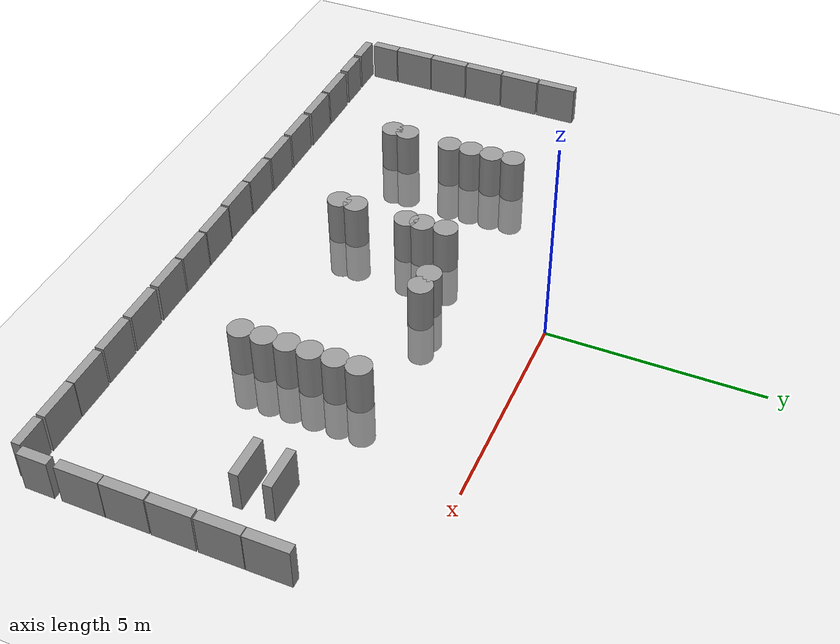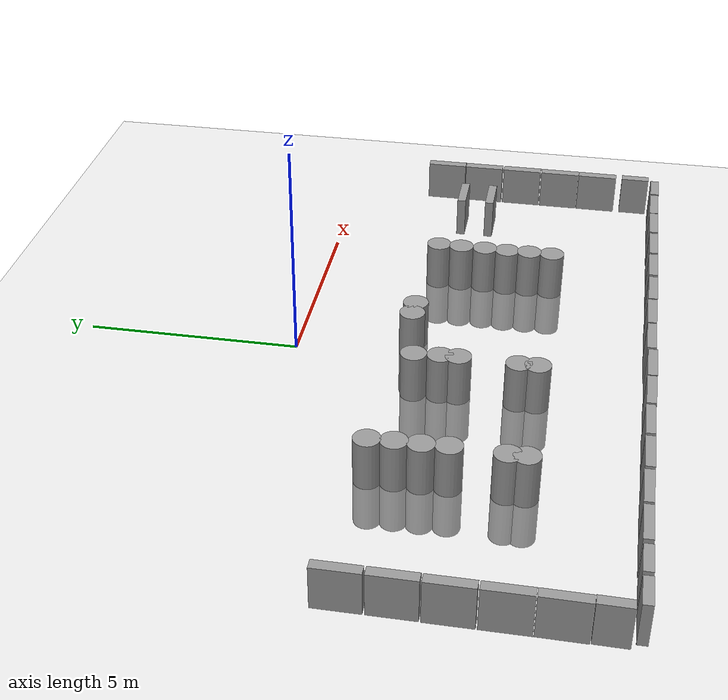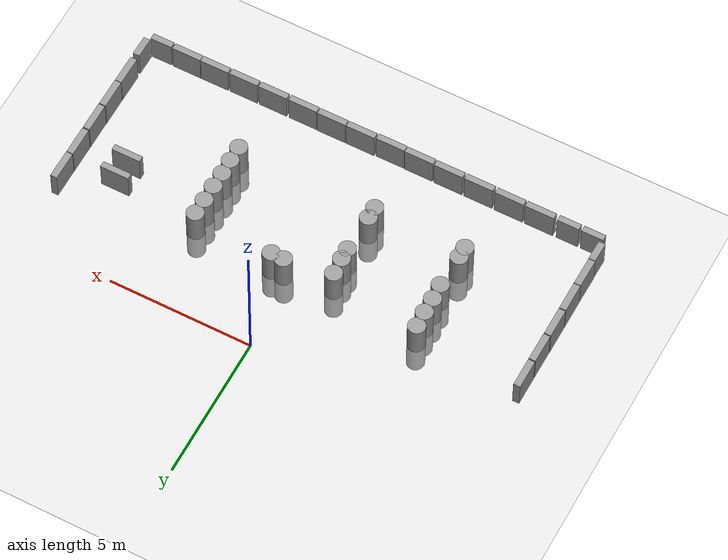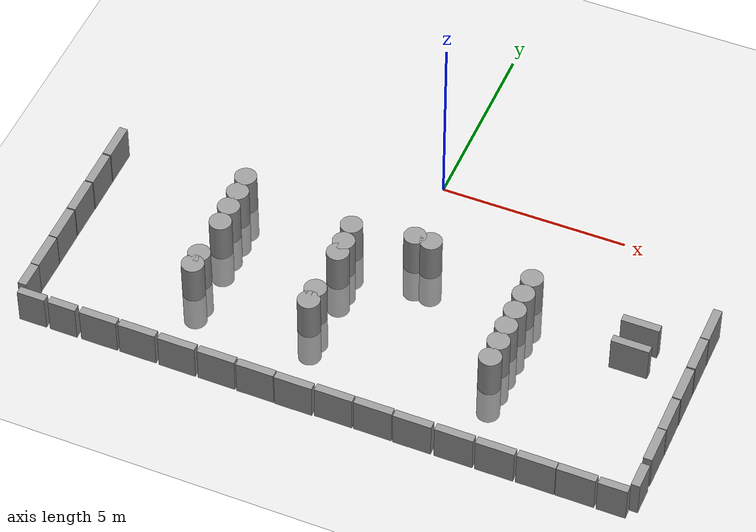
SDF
<sdf version="1.6">
 <world name="default">
  <model name="ground_plane">
   <static>1</static>
   <static>1</static>
   <link name="link">
    <collision name="collision">
     <geometry><plane><normal>0 0 1</normal><size>100 100</size></plane></geometry>
     <surface><friction><ode><mu>100</mu><mu2>50</mu2></ode></friction></surface>
    </collision>
    <visual name="visual">
     <cast_shadows>0</cast_shadows>
     <geometry><plane><normal>0 0 1</normal><size>100 100</size></plane></geometry>
     <material>
      <script><uri>file://media/materials/scripts/gazebo.material</uri><name>Gazebo/Grey</name></script>
     </material>
    </visual>
   </link>
  </model>
  <model name="unit_box_0_clone_9">
   <pose>8.12548 -2.50421 0.5 0 -0 -1.6e-05</pose>
   <link name="link">
    <inertial>
     <mass>1</mass>
     <inertia>
      <ixx>0.166667</ixx>
      <ixy>0</ixy>
      <ixz>0</ixz>
      <iyy>0.166667</iyy>
      <iyz>0</iyz>
      <izz>0.166667</izz>
     </inertia>
    </inertial>
    <collision name="collision"><geometry><box><size>0.230819 1 1</size></box></geometry></collision>
    <visual name="visual">
     <geometry><box><size>0.230819 1 1</size></box></geometry>
     <material>
      <script><name>Gazebo/Grey</name><uri>file://media/materials/scripts/gazebo.material</uri></script>
     </material>
    </visual>
   </link>
  </model>
  <model name="unit_box_0_clone_10">
   <pose>8.12331 -3.52223 0.5 0 -0 -1.6e-05</pose>
   <link name="link">
    <inertial>
     <mass>1</mass>
     <inertia>
      <ixx>0.166667</ixx>
      <ixy>0</ixy>
      <ixz>0</ixz>
      <iyy>0.166667</iyy>
      <iyz>0</iyz>
      <izz>0.166667</izz>
     </inertia>
    </inertial>
    <collision name="collision"><geometry><box><size>0.230819 1 1</size></box></geometry></collision>
    <visual name="visual">
     <geometry><box><size>0.230819 1 1</size></box></geometry>
     <material>
      <script><name>Gazebo/Grey</name><uri>file://media/materials/scripts/gazebo.material</uri></script>
     </material>
    </visual>
   </link>
  </model>
  <model name="unit_box_0_clone_11">
   <pose>8.1233 -4.56316 0.5 0 -0 -1.6e-05</pose>
   <link name="link">
    <inertial>
     <mass>1</mass>
     <inertia>
      <ixx>0.166667</ixx>
      <ixy>0</ixy>
      <ixz>0</ixz>
      <iyy>0.166667</iyy>
      <iyz>0</iyz>
      <izz>0.166667</izz>
     </inertia>
    </inertial>
    <collision name="collision"><geometry><box><size>0.230819 1 1</size></box></geometry></collision>
    <visual name="visual">
     <geometry><box><size>0.230819 1 1</size></box></geometry>
     <material>
      <script><name>Gazebo/Grey</name><uri>file://media/materials/scripts/gazebo.material</uri></script>
     </material>
    </visual>
   </link>
  </model>
  <model name="unit_box_0_clone_12">
   <pose>8.11815 -5.59378 0.5 0 -0 -1.6e-05</pose>
   <link name="link">
    <inertial>
     <mass>1</mass>
     <inertia>
      <ixx>0.166667</ixx>
      <ixy>0</ixy>
      <ixz>0</ixz>
      <iyy>0.166667</iyy>
      <iyz>0</iyz>
      <izz>0.166667</izz>
     </inertia>
    </inertial>
    <collision name="collision"><geometry><box><size>0.230819 1 1</size></box></geometry></collision>
    <visual name="visual">
     <geometry><box><size>0.230819 1 1</size></box></geometry>
     <material>
      <script><name>Gazebo/Grey</name><uri>file://media/materials/scripts/gazebo.material</uri></script>
     </material>
    </visual>
   </link>
  </model>
  <model name="unit_box_0_clone_13">
   <pose>8.11333 -6.60776 0.5 -0 -0 -0.005505</pose>
   <link name="link">
    <inertial>
     <mass>1</mass>
     <inertia>
      <ixx>0.166667</ixx>
      <ixy>0</ixy>
      <ixz>0</ixz>
      <iyy>0.166667</iyy>
      <iyz>0</iyz>
      <izz>0.166667</izz>
     </inertia>
    </inertial>
    <collision name="collision"><geometry><box><size>0.230819 1 1</size></box></geometry></collision>
    <visual name="visual">
     <geometry><box><size>0.230819 1 1</size></box></geometry>
     <material>
      <script><name>Gazebo/Grey</name><uri>file://media/materials/scripts/gazebo.material</uri></script>
     </material>
    </visual>
   </link>
  </model>
  <model name="unit_box_clone_15_clone_0">
   <pose>6.71207 -8.13106 0.5 0 -0 0.000212</pose>
   <link name="link">
    <inertial>
     <mass>1</mass>
     <inertia>
      <ixx>0.166667</ixx>
      <ixy>0</ixy>
      <ixz>0</ixz>
      <iyy>0.166667</iyy>
      <iyz>0</iyz>
      <izz>0.166667</izz>
     </inertia>
    </inertial>
    <collision name="collision"><geometry><box><size>1 0.210541 1</size></box></geometry></collision>
    <visual name="visual">
     <geometry><box><size>1 0.210541 1</size></box></geometry>
     <material>
      <script><name>Gazebo/Grey</name><uri>file://media/materials/scripts/gazebo.material</uri></script>
     </material>
    </visual>
   </link>
  </model>
  <model name="unit_box_clone_15_clone_1">
   <pose>5.69715 -8.13105 0.5 0 -0 0.000212</pose>
   <link name="link">
    <inertial>
     <mass>1</mass>
     <inertia>
      <ixx>0.166667</ixx>
      <ixy>0</ixy>
      <ixz>0</ixz>
      <iyy>0.166667</iyy>
      <iyz>0</iyz>
      <izz>0.166667</izz>
     </inertia>
    </inertial>
    <collision name="collision"><geometry><box><size>1 0.210541 1</size></box></geometry></collision>
    <visual name="visual">
     <geometry><box><size>1 0.210541 1</size></box></geometry>
     <material>
      <script><name>Gazebo/Grey</name><uri>file://media/materials/scripts/gazebo.material</uri></script>
     </material>
    </visual>
   </link>
  </model>
  <model name="unit_box_clone_15_clone_2">
   <pose>4.63881 -8.13723 0.5 0 -0 0.000212</pose>
   <link name="link">
    <inertial>
     <mass>1</mass>
     <inertia>
      <ixx>0.166667</ixx>
      <ixy>0</ixy>
      <ixz>0</ixz>
      <iyy>0.166667</iyy>
      <iyz>0</iyz>
      <izz>0.166667</izz>
     </inertia>
    </inertial>
    <collision name="collision"><geometry><box><size>1 0.210541 1</size></box></geometry></collision>
    <visual name="visual">
     <geometry><box><size>1 0.210541 1</size></box></geometry>
     <material>
      <script><name>Gazebo/Grey</name><uri>file://media/materials/scripts/gazebo.material</uri></script>
     </material>
    </visual>
   </link>
  </model>
  <model name="unit_box_clone_15_clone_3">
   <pose>3.57975 -8.13723 0.5 0 -0 0.000212</pose>
   <link name="link">
    <inertial>
     <mass>1</mass>
     <inertia>
      <ixx>0.166667</ixx>
      <ixy>0</ixy>
      <ixz>0</ixz>
      <iyy>0.166667</iyy>
      <iyz>0</iyz>
      <izz>0.166667</izz>
     </inertia>
    </inertial>
    <collision name="collision"><geometry><box><size>1 0.210541 1</size></box></geometry></collision>
    <visual name="visual">
     <geometry><box><size>1 0.210541 1</size></box></geometry>
     <material>
      <script><name>Gazebo/Grey</name><uri>file://media/materials/scripts/gazebo.material</uri></script>
     </material>
    </visual>
   </link>
  </model>
  <model name="unit_box_clone_15_clone_4">
   <pose>2.49815 -8.13722 0.5 0 -0 0.000212</pose>
   <link name="link">
    <inertial>
     <mass>1</mass>
     <inertia>
      <ixx>0.166667</ixx>
      <ixy>0</ixy>
      <ixz>0</ixz>
      <iyy>0.166667</iyy>
      <iyz>0</iyz>
      <izz>0.166667</izz>
     </inertia>
    </inertial>
    <collision name="collision"><geometry><box><size>1 0.210541 1</size></box></geometry></collision>
    <visual name="visual">
     <geometry><box><size>1 0.210541 1</size></box></geometry>
     <material>
      <script><name>Gazebo/Grey</name><uri>file://media/materials/scripts/gazebo.material</uri></script>
     </material>
    </visual>
   </link>
  </model>
  <model name="unit_box_clone_15_clone_5">
   <pose>1.46162 -8.12595 0.5 0 -0 0.000212</pose>
   <link name="link">
    <inertial>
     <mass>1</mass>
     <inertia>
      <ixx>0.166667</ixx>
      <ixy>0</ixy>
      <ixz>0</ixz>
      <iyy>0.166667</iyy>
      <iyz>0</iyz>
      <izz>0.166667</izz>
     </inertia>
    </inertial>
    <collision name="collision"><geometry><box><size>1 0.210541 1</size></box></geometry></collision>
    <visual name="visual">
     <geometry><box><size>1 0.210541 1</size></box></geometry>
     <material>
      <script><name>Gazebo/Grey</name><uri>file://media/materials/scripts/gazebo.material</uri></script>
     </material>
    </visual>
   </link>
  </model>
  <model name="unit_box_clone_15_clone_6">
   <pose>0.425094 -8.12594 0.5 0 -0 0.000212</pose>
   <link name="link">
    <inertial>
     <mass>1</mass>
     <inertia>
      <ixx>0.166667</ixx>
      <ixy>0</ixy>
      <ixz>0</ixz>
      <iyy>0.166667</iyy>
      <iyz>0</iyz>
      <izz>0.166667</izz>
     </inertia>
    </inertial>
    <collision name="collision"><geometry><box><size>1 0.210541 1</size></box></geometry></collision>
    <visual name="visual">
     <geometry><box><size>1 0.210541 1</size></box></geometry>
     <material>
      <script><name>Gazebo/Grey</name><uri>file://media/materials/scripts/gazebo.material</uri></script>
     </material>
    </visual>
   </link>
  </model>
  <model name="unit_box_clone_15_clone_7">
   <pose>-0.633968 -8.14849 0.5 0 -0 0.000212</pose>
   <link name="link">
    <inertial>
     <mass>1</mass>
     <inertia>
      <ixx>0.166667</ixx>
      <ixy>0</ixy>
      <ixz>0</ixz>
      <iyy>0.166667</iyy>
      <iyz>0</iyz>
      <izz>0.166667</izz>
     </inertia>
    </inertial>
    <collision name="collision"><geometry><box><size>1 0.210541 1</size></box></geometry></collision>
    <visual name="visual">
     <geometry><box><size>1 0.210541 1</size></box></geometry>
     <material>
      <script><name>Gazebo/Grey</name><uri>file://media/materials/scripts/gazebo.material</uri></script>
     </material>
    </visual>
   </link>
  </model>
  <model name="unit_box_clone_15_clone_8">
   <pose>-1.65923 -8.13721 0.5 0 -0 0.000212</pose>
   <link name="link">
    <inertial>
     <mass>1</mass>
     <inertia>
      <ixx>0.166667</ixx>
      <ixy>0</ixy>
      <ixz>0</ixz>
      <iyy>0.166667</iyy>
      <iyz>0</iyz>
      <izz>0.166667</izz>
     </inertia>
    </inertial>
    <collision name="collision"><geometry><box><size>1 0.210541 1</size></box></geometry></collision>
    <visual name="visual">
     <geometry><box><size>1 0.210541 1</size></box></geometry>
     <material>
      <script><name>Gazebo/Grey</name><uri>file://media/materials/scripts/gazebo.material</uri></script>
     </material>
    </visual>
   </link>
  </model>
  <model name="unit_box_clone_15_clone_9">
   <pose>-2.70703 -8.12596 0.5 0 -0 0.000212</pose>
   <link name="link">
    <inertial>
     <mass>1</mass>
     <inertia>
      <ixx>0.166667</ixx>
      <ixy>0</ixy>
      <ixz>0</ixz>
      <iyy>0.166667</iyy>
      <iyz>0</iyz>
      <izz>0.166667</izz>
     </inertia>
    </inertial>
    <collision name="collision"><geometry><box><size>1 0.210541 1</size></box></geometry></collision>
    <visual name="visual">
     <geometry><box><size>1 0.210541 1</size></box></geometry>
     <material>
      <script><name>Gazebo/Grey</name><uri>file://media/materials/scripts/gazebo.material</uri></script>
     </material>
    </visual>
   </link>
  </model>
  <model name="unit_box_clone_15_clone_10">
   <pose>-3.77736 -8.12595 0.5 0 -0 0.000212</pose>
   <link name="link">
    <inertial>
     <mass>1</mass>
     <inertia>
      <ixx>0.166667</ixx>
      <ixy>0</ixy>
      <ixz>0</ixz>
      <iyy>0.166667</iyy>
      <iyz>0</iyz>
      <izz>0.166667</izz>
     </inertia>
    </inertial>
    <collision name="collision"><geometry><box><size>1 0.210541 1</size></box></geometry></collision>
    <visual name="visual">
     <geometry><box><size>1 0.210541 1</size></box></geometry>
     <material>
      <script><name>Gazebo/Grey</name><uri>file://media/materials/scripts/gazebo.material</uri></script>
     </material>
    </visual>
   </link>
  </model>
  <model name="unit_box_clone_15_clone_11">
   <pose>-4.85896 -8.11469 0.5 0 -0 0.000212</pose>
   <link name="link">
    <inertial>
     <mass>1</mass>
     <inertia>
      <ixx>0.166667</ixx>
      <ixy>0</ixy>
      <ixz>0</ixz>
      <iyy>0.166667</iyy>
      <iyz>0</iyz>
      <izz>0.166667</izz>
     </inertia>
    </inertial>
    <collision name="collision"><geometry><box><size>1 0.210541 1</size></box></geometry></collision>
    <visual name="visual">
     <geometry><box><size>1 0.210541 1</size></box></geometry>
     <material>
      <script><name>Gazebo/Grey</name><uri>file://media/materials/scripts/gazebo.material</uri></script>
     </material>
    </visual>
   </link>
  </model>
  <model name="unit_box_clone_15_clone_12">
   <pose>-5.91802 -8.11468 0.5 0 -0 0.000212</pose>
   <link name="link">
    <inertial>
     <mass>1</mass>
     <inertia>
      <ixx>0.166667</ixx>
      <ixy>0</ixy>
      <ixz>0</ixz>
      <iyy>0.166667</iyy>
      <iyz>0</iyz>
      <izz>0.166667</izz>
     </inertia>
    </inertial>
    <collision name="collision"><geometry><box><size>1 0.210541 1</size></box></geometry></collision>
    <visual name="visual">
     <geometry><box><size>1 0.210541 1</size></box></geometry>
     <material>
      <script><name>Gazebo/Grey</name><uri>file://media/materials/scripts/gazebo.material</uri></script>
     </material>
    </visual>
   </link>
  </model>
  <model name="unit_box_0_clone_4_clone_9">
   <pose>-8.13285 -2.58438 0.5 0 -0 -1.6e-05</pose>
   <link name="link">
    <inertial>
     <mass>1</mass>
     <inertia>
      <ixx>0.166667</ixx>
      <ixy>0</ixy>
      <ixz>0</ixz>
      <iyy>0.166667</iyy>
      <iyz>0</iyz>
      <izz>0.166667</izz>
     </inertia>
    </inertial>
    <collision name="collision"><geometry><box><size>0.230819 1 1</size></box></geometry></collision>
    <visual name="visual">
     <geometry><box><size>0.230819 1 1</size></box></geometry>
     <material>
      <script><name>Gazebo/Grey</name><uri>file://media/materials/scripts/gazebo.material</uri></script>
     </material>
    </visual>
   </link>
  </model>
  <model name="unit_box_0_clone_4_clone_10">
   <pose>-8.13285 -3.6243 0.5 0 -0 -1.6e-05</pose>
   <link name="link">
    <inertial>
     <mass>1</mass>
     <inertia>
      <ixx>0.166667</ixx>
      <ixy>0</ixy>
      <ixz>0</ixz>
      <iyy>0.166667</iyy>
      <iyz>0</iyz>
      <izz>0.166667</izz>
     </inertia>
    </inertial>
    <collision name="collision"><geometry><box><size>0.230819 1 1</size></box></geometry></collision>
    <visual name="visual">
     <geometry><box><size>0.230819 1 1</size></box></geometry>
     <material>
      <script><name>Gazebo/Grey</name><uri>file://media/materials/scripts/gazebo.material</uri></script>
     </material>
    </visual>
   </link>
  </model>
  <model name="unit_box_0_clone_4_clone_11">
   <pose>-8.1396 -4.65747 0.5 0 -0 -1.6e-05</pose>
   <link name="link">
    <inertial>
     <mass>1</mass>
     <inertia>
      <ixx>0.166667</ixx>
      <ixy>0</ixy>
      <ixz>0</ixz>
      <iyy>0.166667</iyy>
      <iyz>0</iyz>
      <izz>0.166667</izz>
     </inertia>
    </inertial>
    <collision name="collision"><geometry><box><size>0.230819 1 1</size></box></geometry></collision>
    <visual name="visual">
     <geometry><box><size>0.230819 1 1</size></box></geometry>
     <material>
      <script><name>Gazebo/Grey</name><uri>file://media/materials/scripts/gazebo.material</uri></script>
     </material>
    </visual>
   </link>
  </model>
  <model name="unit_box_0_clone_4_clone_12">
   <pose>-8.1396 -5.69064 0.5 0 -0 -1.6e-05</pose>
   <link name="link">
    <inertial>
     <mass>1</mass>
     <inertia>
      <ixx>0.166667</ixx>
      <ixy>0</ixy>
      <ixz>0</ixz>
      <iyy>0.166667</iyy>
      <iyz>0</iyz>
      <izz>0.166667</izz>
     </inertia>
    </inertial>
    <collision name="collision"><geometry><box><size>0.230819 1 1</size></box></geometry></collision>
    <visual name="visual">
     <geometry><box><size>0.230819 1 1</size></box></geometry>
     <material>
      <script><name>Gazebo/Grey</name><uri>file://media/materials/scripts/gazebo.material</uri></script>
     </material>
    </visual>
   </link>
  </model>
  <model name="unit_box_0_clone_4_clone_13">
   <pose>-8.14113 -6.70873 0.5 0 -0 -0.009128</pose>
   <link name="link">
    <inertial>
     <mass>1</mass>
     <inertia>
      <ixx>0.166667</ixx>
      <ixy>0</ixy>
      <ixz>0</ixz>
      <iyy>0.166667</iyy>
      <iyz>0</iyz>
      <izz>0.166667</izz>
     </inertia>
    </inertial>
    <collision name="collision"><geometry><box><size>0.230819 1 1</size></box></geometry></collision>
    <visual name="visual">
     <geometry><box><size>0.230819 1 1</size></box></geometry>
     <material>
      <script><name>Gazebo/Grey</name><uri>file://media/materials/scripts/gazebo.material</uri></script>
     </material>
    </visual>
   </link>
  </model>
  <model name="unit_box_clone_11_clone_1_clone_0">
   <pose>-6.90881 -8.11956 0.499997 -2e-06 -8e-06 -0.004561</pose>
   <link name="link">
    <inertial>
     <mass>1</mass>
     <inertia>
      <ixx>0.166667</ixx>
      <ixy>0</ixy>
      <ixz>0</ixz>
      <iyy>0.166667</iyy>
      <iyz>0</iyz>
      <izz>0.166667</izz>
     </inertia>
    </inertial>
    <collision name="collision"><geometry><box><size>0.750223 0.210541 1</size></box></geometry></collision>
    <visual name="visual">
     <geometry><box><size>0.750223 0.210541 1</size></box></geometry>
     <material>
      <script><name>Gazebo/Grey</name><uri>file://media/materials/scripts/gazebo.material</uri></script>
     </material>
    </visual>
   </link>
  </model>
  <model name="unit_box_0_clone_4_clone_13_clone_clone">
   <pose>-8.13833 -7.5766 0.499997 -7e-06 2e-06 -0.012568</pose>
   <link name="link">
    <inertial>
     <mass>1</mass>
     <inertia>
      <ixx>0.166667</ixx>
      <ixy>0</ixy>
      <ixz>0</ixz>
      <iyy>0.166667</iyy>
      <iyz>0</iyz>
      <izz>0.166667</izz>
     </inertia>
    </inertial>
    <collision name="collision"><geometry><box><size>0.230819 0.700336 1</size></box></geometry></collision>
    <visual name="visual">
     <geometry><box><size>0.230819 0.700336 1</size></box></geometry>
     <material>
      <script><name>Gazebo/Grey</name><uri>file://media/materials/scripts/gazebo.material</uri></script>
     </material>
    </visual>
   </link>
  </model>
  <model name="unit_box_clone_11_clone_1_clone_0_clone">
   <pose>-7.75475 -8.122 0.499997 2e-06 7e-06 0.001038</pose>
   <link name="link">
    <inertial>
     <mass>1</mass>
     <inertia>
      <ixx>0.166667</ixx>
      <ixy>0</ixy>
      <ixz>0</ixz>
      <iyy>0.166667</iyy>
      <iyz>0</iyz>
      <izz>0.166667</izz>
     </inertia>
    </inertial>
    <collision name="collision"><geometry><box><size>0.750223 0.210541 1</size></box></geometry></collision>
    <visual name="visual">
     <geometry><box><size>0.750223 0.210541 1</size></box></geometry>
     <material>
      <script><name>Gazebo/Grey</name><uri>file://media/materials/scripts/gazebo.material</uri></script>
     </material>
    </visual>
   </link>
  </model>
  <model name="unit_box_clone_11_clone_1_clone_2">
   <pose>7.64249 -8.13928 0.5 0 -1e-06 0.003871</pose>
   <link name="link">
    <inertial>
     <mass>1</mass>
     <inertia>
      <ixx>0.166667</ixx>
      <ixy>0</ixy>
      <ixz>0</ixz>
      <iyy>0.166667</iyy>
      <iyz>0</iyz>
      <izz>0.166667</izz>
     </inertia>
    </inertial>
    <collision name="collision"><geometry><box><size>0.750223 0.210541 1</size></box></geometry></collision>
    <visual name="visual">
     <geometry><box><size>0.750223 0.210541 1</size></box></geometry>
     <material>
      <script><name>Gazebo/Grey</name><uri>file://media/materials/scripts/gazebo.material</uri></script>
     </material>
    </visual>
   </link>
  </model>
  <model name="unit_box_0_clone_4_clone_13_clone_clone_clone">
   <pose>8.11857 -7.62155 0.499997 -7e-06 -3e-06 -0.006136</pose>
   <link name="link">
    <inertial>
     <mass>1</mass>
     <inertia>
      <ixx>0.166667</ixx>
      <ixy>0</ixy>
      <ixz>0</ixz>
      <iyy>0.166667</iyy>
      <iyz>0</iyz>
      <izz>0.166667</izz>
     </inertia>
    </inertial>
    <collision name="collision"><geometry><box><size>0.230819 0.700336 1</size></box></geometry></collision>
    <visual name="visual">
     <geometry><box><size>0.230819 0.700336 1</size></box></geometry>
     <material>
      <script><name>Gazebo/Grey</name><uri>file://media/materials/scripts/gazebo.material</uri></script>
     </material>
    </visual>
   </link>
  </model>
  <model name="unit_cylinder_153_clone_clone_5_clone_clone_13_clone_0_clone_29_clone_32_clone_0_clone_4_clone_46_clone_42_clone_clone_clone_4_clone_2_clone_16">
   <static>1</static>
   <pose>-4.47583 -2.48846 0 0 -0 0</pose>
   <link name="link">
    <inertial>
     <mass>1</mass>
     <inertia><ixx>0.145833</ixx><ixy>0</ixy><ixz>0</ixz><iyy>0.145833</iyy><iyz>0</iyz><izz>0.125</izz></inertia>
    </inertial>
    <collision name="collision">
     <geometry><cylinder><radius>0.295479</radius><length>2.18667</length></cylinder></geometry>
    </collision>
    <visual name="visual">
     <geometry><cylinder><radius>0.295479</radius><length>2.18667</length></cylinder></geometry>
     <material>
      <script><name>Gazebo/Grey</name><uri>file://media/materials/scripts/gazebo.material</uri></script>
     </material>
    </visual>
   </link>
  </model>
  <model name="unit_cylinder_153_clone_clone_5_clone_clone_13_clone_0_clone_29_clone_32_clone_0_clone_4_clone_46_clone_42_clone_clone_clone_4_clone_2_clone_17">
   <static>1</static>
   <pose>-4.45078 -3.03983 0 0 -0 0</pose>
   <link name="link">
    <inertial>
     <mass>1</mass>
     <inertia><ixx>0.145833</ixx><ixy>0</ixy><ixz>0</ixz><iyy>0.145833</iyy><iyz>0</iyz><izz>0.125</izz></inertia>
    </inertial>
    <collision name="collision">
     <geometry><cylinder><radius>0.295479</radius><length>2.18667</length></cylinder></geometry>
    </collision>
    <visual name="visual">
     <geometry><cylinder><radius>0.295479</radius><length>2.18667</length></cylinder></geometry>
     <material>
      <script><name>Gazebo/Grey</name><uri>file://media/materials/scripts/gazebo.material</uri></script>
     </material>
    </visual>
   </link>
  </model>
  <model name="unit_cylinder_153_clone_clone_5_clone_clone_13_clone_0_clone_29_clone_32_clone_0_clone_4_clone_46_clone_42_clone_clone_clone_4_clone_2_clone_18">
   <static>1</static>
   <pose>-4.45078 -3.5912 0 0 -0 0</pose>
   <link name="link">
    <inertial>
     <mass>1</mass>
     <inertia><ixx>0.145833</ixx><ixy>0</ixy><ixz>0</ixz><iyy>0.145833</iyy><iyz>0</iyz><izz>0.125</izz></inertia>
    </inertial>
    <collision name="collision">
     <geometry><cylinder><radius>0.295479</radius><length>2.18667</length></cylinder></geometry>
    </collision>
    <visual name="visual">
     <geometry><cylinder><radius>0.295479</radius><length>2.18667</length></cylinder></geometry>
     <material>
      <script><name>Gazebo/Grey</name><uri>file://media/materials/scripts/gazebo.material</uri></script>
     </material>
    </visual>
   </link>
  </model>
  <model name="unit_cylinder_153_clone_clone_5_clone_clone_13_clone_0_clone_29_clone_32_clone_0_clone_4_clone_46_clone_42_clone_clone_clone_4_clone_2_clone_19">
   <static>1</static>
   <pose>-4.42572 -4.1551 0 0 -0 0</pose>
   <link name="link">
    <inertial>
     <mass>1</mass>
     <inertia><ixx>0.145833</ixx><ixy>0</ixy><ixz>0</ixz><iyy>0.145833</iyy><iyz>0</iyz><izz>0.125</izz></inertia>
    </inertial>
    <collision name="collision">
     <geometry><cylinder><radius>0.295479</radius><length>2.18667</length></cylinder></geometry>
    </collision>
    <visual name="visual">
     <geometry><cylinder><radius>0.295479</radius><length>2.18667</length></cylinder></geometry>
     <material>
      <script><name>Gazebo/Grey</name><uri>file://media/materials/scripts/gazebo.material</uri></script>
     </material>
    </visual>
   </link>
  </model>
  <model name="unit_cylinder_153_clone_clone_5_clone_clone_13_clone_0_clone_29_clone_32_clone_0_clone_4_clone_46_clone_42_clone_clone_clone_4_clone_2_clone_20">
   <static>1</static>
   <pose>-4.47585 -5.33302 0 0 -0 0</pose>
   <link name="link">
    <inertial>
     <mass>1</mass>
     <inertia><ixx>0.145833</ixx><ixy>0</ixy><ixz>0</ixz><iyy>0.145833</iyy><iyz>0</iyz><izz>0.125</izz></inertia>
    </inertial>
    <collision name="collision">
     <geometry><cylinder><radius>0.295479</radius><length>2.18667</length></cylinder></geometry>
    </collision>
    <visual name="visual">
     <geometry><cylinder><radius>0.295479</radius><length>2.18667</length></cylinder></geometry>
     <material>
      <script><name>Gazebo/Grey</name><uri>file://media/materials/scripts/gazebo.material</uri></script>
     </material>
    </visual>
   </link>
  </model>
  <model name="unit_cylinder_153_clone_clone_5_clone_clone_13_clone_0_clone_29_clone_32_clone_0_clone_4_clone_46_clone_42_clone_clone_clone_4_clone_2_clone_21">
   <static>1</static>
   <pose>-4.47585 -5.72148 0 0 -0 0</pose>
   <link name="link">
    <inertial>
     <mass>1</mass>
     <inertia><ixx>0.145833</ixx><ixy>0</ixy><ixz>0</ixz><iyy>0.145833</iyy><iyz>0</iyz><izz>0.125</izz></inertia>
    </inertial>
    <collision name="collision">
     <geometry><cylinder><radius>0.295479</radius><length>2.18667</length></cylinder></geometry>
    </collision>
    <visual name="visual">
     <geometry><cylinder><radius>0.295479</radius><length>2.18667</length></cylinder></geometry>
     <material>
      <script><name>Gazebo/Grey</name><uri>file://media/materials/scripts/gazebo.material</uri></script>
     </material>
    </visual>
   </link>
  </model>
  <model name="unit_cylinder_153_clone_clone_5_clone_clone_13_clone_0_clone_29_clone_32_clone_0_clone_4_clone_46_clone_42_clone_clone_clone_4_clone_2_clone_29_clone_5">
   <static>1</static>
   <pose>-1.32696 -2.9652 0 0 -0 0</pose>
   <link name="link">
    <inertial>
     <mass>1</mass>
     <inertia><ixx>0.145833</ixx><ixy>0</ixy><ixz>0</ixz><iyy>0.145833</iyy><iyz>0</iyz><izz>0.125</izz></inertia>
    </inertial>
    <collision name="collision">
     <geometry><cylinder><radius>0.295479</radius><length>2.18667</length></cylinder></geometry>
    </collision>
    <visual name="visual">
     <geometry><cylinder><radius>0.295479</radius><length>2.18667</length></cylinder></geometry>
     <material>
      <script><name>Gazebo/Grey</name><uri>file://media/materials/scripts/gazebo.material</uri></script>
     </material>
    </visual>
   </link>
  </model>
  <model name="unit_cylinder_153_clone_clone_5_clone_clone_13_clone_0_clone_29_clone_32_clone_0_clone_4_clone_46_clone_42_clone_clone_clone_4_clone_2_clone_29_clone_6">
   <static>1</static>
   <pose>-1.2915 -3.55022 0 0 -0 0</pose>
   <link name="link">
    <inertial>
     <mass>1</mass>
     <inertia><ixx>0.145833</ixx><ixy>0</ixy><ixz>0</ixz><iyy>0.145833</iyy><iyz>0</iyz><izz>0.125</izz></inertia>
    </inertial>
    <collision name="collision">
     <geometry><cylinder><radius>0.295479</radius><length>2.18667</length></cylinder></geometry>
    </collision>
    <visual name="visual">
     <geometry><cylinder><radius>0.295479</radius><length>2.18667</length></cylinder></geometry>
     <material>
      <script><name>Gazebo/Grey</name><uri>file://media/materials/scripts/gazebo.material</uri></script>
     </material>
    </visual>
   </link>
  </model>
  <model name="unit_cylinder_153_clone_clone_5_clone_clone_13_clone_0_clone_29_clone_32_clone_0_clone_4_clone_46_clone_42_clone_clone_clone_4_clone_2_clone_29_clone_7">
   <static>1</static>
   <pose>-1.28264 -3.94909 0 0 -0 0</pose>
   <link name="link">
    <inertial>
     <mass>1</mass>
     <inertia><ixx>0.145833</ixx><ixy>0</ixy><ixz>0</ixz><iyy>0.145833</iyy><iyz>0</iyz><izz>0.125</izz></inertia>
    </inertial>
    <collision name="collision">
     <geometry><cylinder><radius>0.295479</radius><length>2.18667</length></cylinder></geometry>
    </collision>
    <visual name="visual">
     <geometry><cylinder><radius>0.295479</radius><length>2.18667</length></cylinder></geometry>
     <material>
      <script><name>Gazebo/Grey</name><uri>file://media/materials/scripts/gazebo.material</uri></script>
     </material>
    </visual>
   </link>
  </model>
  <model name="unit_cylinder_153_clone_clone_5_clone_clone_13_clone_0_clone_29_clone_32_clone_0_clone_4_clone_46_clone_42_clone_clone_clone_4_clone_2_clone_29_clone_8">
   <static>1</static>
   <pose>-1.3181 -5.27867 0 0 -0 0</pose>
   <link name="link">
    <inertial>
     <mass>1</mass>
     <inertia><ixx>0.145833</ixx><ixy>0</ixy><ixz>0</ixz><iyy>0.145833</iyy><iyz>0</iyz><izz>0.125</izz></inertia>
    </inertial>
    <collision name="collision">
     <geometry><cylinder><radius>0.295479</radius><length>2.18667</length></cylinder></geometry>
    </collision>
    <visual name="visual">
     <geometry><cylinder><radius>0.295479</radius><length>2.18667</length></cylinder></geometry>
     <material>
      <script><name>Gazebo/Grey</name><uri>file://media/materials/scripts/gazebo.material</uri></script>
     </material>
    </visual>
   </link>
  </model>
  <model name="unit_cylinder_153_clone_clone_5_clone_clone_13_clone_0_clone_29_clone_32_clone_0_clone_4_clone_46_clone_42_clone_clone_clone_4_clone_2_clone_29_clone_9">
   <static>1</static>
   <pose>-1.31811 -5.69527 0 0 -0 0</pose>
   <link name="link">
    <inertial>
     <mass>1</mass>
     <inertia><ixx>0.145833</ixx><ixy>0</ixy><ixz>0</ixz><iyy>0.145833</iyy><iyz>0</iyz><izz>0.125</izz></inertia>
    </inertial>
    <collision name="collision">
     <geometry><cylinder><radius>0.295479</radius><length>2.18667</length></cylinder></geometry>
    </collision>
    <visual name="visual">
     <geometry><cylinder><radius>0.295479</radius><length>2.18667</length></cylinder></geometry>
     <material>
      <script><name>Gazebo/Grey</name><uri>file://media/materials/scripts/gazebo.material</uri></script>
     </material>
    </visual>
   </link>
  </model>
  <model name="unit_cylinder_153_clone_clone_5_clone_clone_13_clone_0_clone_29_clone_32_clone_0_clone_4_clone_46_clone_42_clone_clone_clone_4_clone_2_clone_29_clone_26">
   <static>1</static>
   <pose>3.52915 -2.87725 0 0 -0 0</pose>
   <link name="link">
    <inertial>
     <mass>1</mass>
     <inertia><ixx>0.145833</ixx><ixy>0</ixy><ixz>0</ixz><iyy>0.145833</iyy><iyz>0</iyz><izz>0.125</izz></inertia>
    </inertial>
    <collision name="collision">
     <geometry><cylinder><radius>0.295479</radius><length>2.18667</length></cylinder></geometry>
    </collision>
    <visual name="visual">
     <geometry><cylinder><radius>0.295479</radius><length>2.18667</length></cylinder></geometry>
     <material>
      <script><name>Gazebo/Grey</name><uri>file://media/materials/scripts/gazebo.material</uri></script>
     </material>
    </visual>
   </link>
  </model>
  <model name="unit_cylinder_153_clone_clone_5_clone_clone_13_clone_0_clone_29_clone_32_clone_0_clone_4_clone_46_clone_42_clone_clone_clone_4_clone_2_clone_29_clone_27">
   <static>1</static>
   <pose>3.51557 -3.43385 0 0 -0 0</pose>
   <link name="link">
    <inertial>
     <mass>1</mass>
     <inertia><ixx>0.145833</ixx><ixy>0</ixy><ixz>0</ixz><iyy>0.145833</iyy><iyz>0</iyz><izz>0.125</izz></inertia>
    </inertial>
    <collision name="collision">
     <geometry><cylinder><radius>0.295479</radius><length>2.18667</length></cylinder></geometry>
    </collision>
    <visual name="visual">
     <geometry><cylinder><radius>0.295479</radius><length>2.18667</length></cylinder></geometry>
     <material>
      <script><name>Gazebo/Grey</name><uri>file://media/materials/scripts/gazebo.material</uri></script>
     </material>
    </visual>
   </link>
  </model>
  <model name="unit_cylinder_153_clone_clone_5_clone_clone_13_clone_0_clone_29_clone_32_clone_0_clone_4_clone_46_clone_42_clone_clone_clone_4_clone_2_clone_29_clone_28">
   <static>1</static>
   <pose>3.51557 -4.01761 0 0 -0 0</pose>
   <link name="link">
    <inertial>
     <mass>1</mass>
     <inertia><ixx>0.145833</ixx><ixy>0</ixy><ixz>0</ixz><iyy>0.145833</iyy><iyz>0</iyz><izz>0.125</izz></inertia>
    </inertial>
    <collision name="collision">
     <geometry><cylinder><radius>0.295479</radius><length>2.18667</length></cylinder></geometry>
    </collision>
    <visual name="visual">
     <geometry><cylinder><radius>0.295479</radius><length>2.18667</length></cylinder></geometry>
     <material>
      <script><name>Gazebo/Grey</name><uri>file://media/materials/scripts/gazebo.material</uri></script>
     </material>
    </visual>
   </link>
  </model>
  <model name="unit_cylinder_153_clone_clone_5_clone_clone_13_clone_0_clone_29_clone_32_clone_0_clone_4_clone_46_clone_42_clone_clone_clone_4_clone_2_clone_29_clone_29">
   <static>1</static>
   <pose>3.49956 -4.5692 0 0 -0 0</pose>
   <link name="link">
    <inertial>
     <mass>1</mass>
     <inertia><ixx>0.145833</ixx><ixy>0</ixy><ixz>0</ixz><iyy>0.145833</iyy><iyz>0</iyz><izz>0.125</izz></inertia>
    </inertial>
    <collision name="collision">
     <geometry><cylinder><radius>0.295479</radius><length>2.18667</length></cylinder></geometry>
    </collision>
    <visual name="visual">
     <geometry><cylinder><radius>0.295479</radius><length>2.18667</length></cylinder></geometry>
     <material>
      <script><name>Gazebo/Grey</name><uri>file://media/materials/scripts/gazebo.material</uri></script>
     </material>
    </visual>
   </link>
  </model>
  <model name="unit_cylinder_153_clone_clone_5_clone_clone_13_clone_0_clone_29_clone_32_clone_0_clone_4_clone_46_clone_42_clone_clone_clone_4_clone_2_clone_29_clone_30">
   <static>1</static>
   <pose>3.51023 -5.11336 0 0 -0 0</pose>
   <link name="link">
    <inertial>
     <mass>1</mass>
     <inertia><ixx>0.145833</ixx><ixy>0</ixy><ixz>0</ixz><iyy>0.145833</iyy><iyz>0</iyz><izz>0.125</izz></inertia>
    </inertial>
    <collision name="collision">
     <geometry><cylinder><radius>0.295479</radius><length>2.18667</length></cylinder></geometry>
    </collision>
    <visual name="visual">
     <geometry><cylinder><radius>0.295479</radius><length>2.18667</length></cylinder></geometry>
     <material>
      <script><name>Gazebo/Grey</name><uri>file://media/materials/scripts/gazebo.material</uri></script>
     </material>
    </visual>
   </link>
  </model>
  <model name="unit_cylinder_153_clone_clone_5_clone_clone_13_clone_0_clone_29_clone_32_clone_0_clone_4_clone_46_clone_42_clone_clone_clone_4_clone_2_clone_29_clone_31">
   <static>1</static>
   <pose>3.51022 -5.66818 0 0 -0 0</pose>
   <link name="link">
    <inertial>
     <mass>1</mass>
     <inertia><ixx>0.145833</ixx><ixy>0</ixy><ixz>0</ixz><iyy>0.145833</iyy><iyz>0</iyz><izz>0.125</izz></inertia>
    </inertial>
    <collision name="collision">
     <geometry><cylinder><radius>0.295479</radius><length>2.18667</length></cylinder></geometry>
    </collision>
    <visual name="visual">
     <geometry><cylinder><radius>0.295479</radius><length>2.18667</length></cylinder></geometry>
     <material>
      <script><name>Gazebo/Grey</name><uri>file://media/materials/scripts/gazebo.material</uri></script>
     </material>
    </visual>
   </link>
  </model>
  <model name="unit_box_clone_9_clone_11">
   <pose>6.52254 -3.13429 0.499999 -1e-06 2e-06 0.000172</pose>
   <link name="link">
    <inertial>
     <mass>1</mass>
     <inertia>
      <ixx>0.166667</ixx>
      <ixy>0</ixy>
      <ixz>0</ixz>
      <iyy>0.166667</iyy>
      <iyz>0</iyz>
      <izz>0.166667</izz>
     </inertia>
    </inertial>
    <collision name="collision"><geometry><box><size>1 0.210541 1</size></box></geometry></collision>
    <visual name="visual">
     <geometry><box><size>1 0.210541 1</size></box></geometry>
     <material>
      <script><name>Gazebo/Grey</name><uri>file://media/materials/scripts/gazebo.material</uri></script>
     </material>
    </visual>
   </link>
  </model>
  <model name="unit_box_clone_9_clone_12">
   <pose>6.52254 -3.86417 0.5 0 -0 0.000197</pose>
   <link name="link">
    <inertial>
     <mass>1</mass>
     <inertia>
      <ixx>0.166667</ixx>
      <ixy>0</ixy>
      <ixz>0</ixz>
      <iyy>0.166667</iyy>
      <iyz>0</iyz>
      <izz>0.166667</izz>
     </inertia>
    </inertial>
    <collision name="collision"><geometry><box><size>1 0.210541 1</size></box></geometry></collision>
    <visual name="visual">
     <geometry><box><size>1 0.210541 1</size></box></geometry>
     <material>
      <script><name>Gazebo/Grey</name><uri>file://media/materials/scripts/gazebo.material</uri></script>
     </material>
    </visual>
   </link>
  </model>
  <model name="unit_cylinder_153_clone_clone_5_clone_clone_13_clone_0_clone_29_clone_32_clone_0_clone_4_clone_46_clone_42_clone_clone_clone_4_clone_2_clone_22_clone_0">
   <static>1</static>
   <pose>0.296513 -2.69051 0 0 -0 0</pose>
   <link name="link">
    <inertial>
     <mass>1</mass>
     <inertia><ixx>0.145833</ixx><ixy>0</ixy><ixz>0</ixz><iyy>0.145833</iyy><iyz>0</iyz><izz>0.125</izz></inertia>
    </inertial>
    <collision name="collision">
     <geometry><cylinder><radius>0.295479</radius><length>2.18667</length></cylinder></geometry>
    </collision>
    <visual name="visual">
     <geometry><cylinder><radius>0.295479</radius><length>2.18667</length></cylinder></geometry>
     <material>
      <script><name>Gazebo/Grey</name><uri>file://media/materials/scripts/gazebo.material</uri></script>
     </material>
    </visual>
   </link>
  </model>
  <model name="unit_cylinder_153_clone_clone_5_clone_clone_13_clone_0_clone_29_clone_32_clone_0_clone_4_clone_46_clone_42_clone_clone_clone_4_clone_2_clone_22_clone_1">
   <static>1</static>
   <pose>0.736813 -2.70813 0 0 -0 0</pose>
   <link name="link">
    <inertial>
     <mass>1</mass>
     <inertia><ixx>0.145833</ixx><ixy>0</ixy><ixz>0</ixz><iyy>0.145833</iyy><iyz>0</iyz><izz>0.125</izz></inertia>
    </inertial>
    <collision name="collision">
     <geometry><cylinder><radius>0.295479</radius><length>2.18667</length></cylinder></geometry>
    </collision>
    <visual name="visual">
     <geometry><cylinder><radius>0.295479</radius><length>2.18667</length></cylinder></geometry>
     <material>
      <script><name>Gazebo/Grey</name><uri>file://media/materials/scripts/gazebo.material</uri></script>
     </material>
    </visual>
   </link>
  </model>
 </world>
</sdf>
